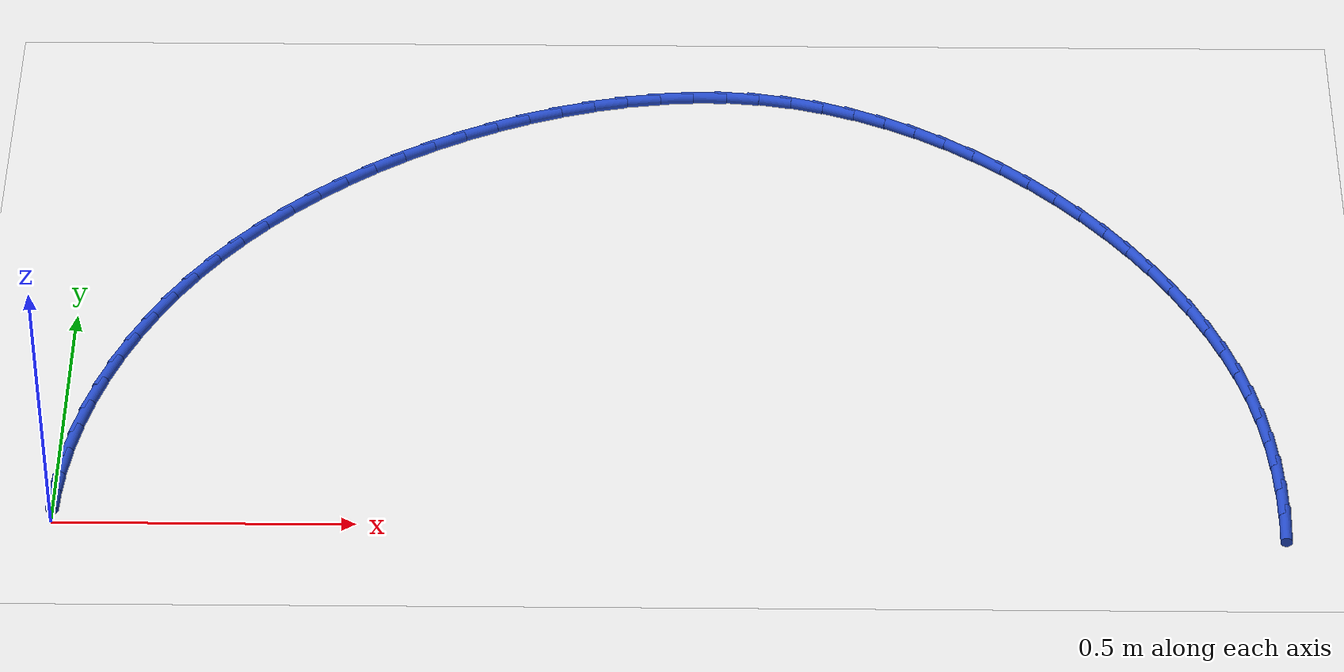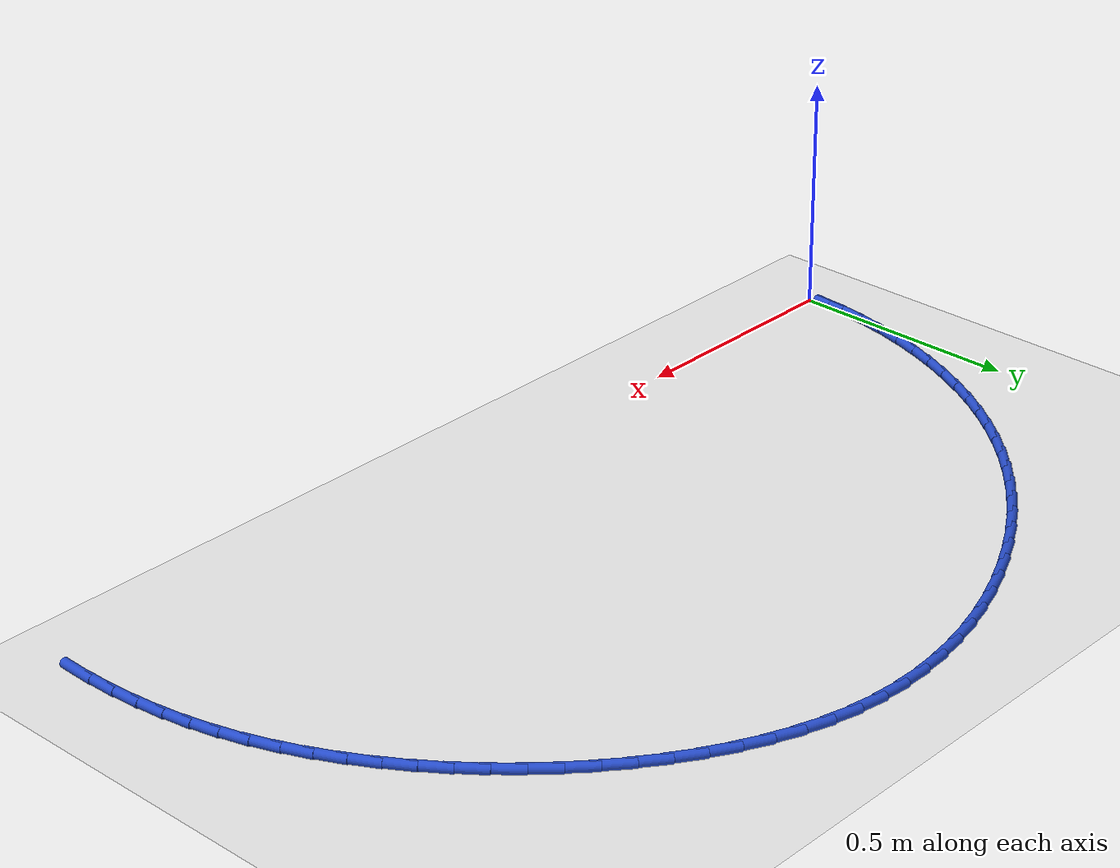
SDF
<sdf version="1.6">
 <world name="default">
  <model name="ground_plane">
   <static>1</static>
   <link name="link">
    <collision name="collision">
     <geometry><plane><normal>0 0 1</normal><size>100 100</size></plane></geometry>
     <surface><friction><ode><mu>100</mu><mu2>50</mu2></ode></friction></surface>
    </collision>
    <visual name="visual">
     <cast_shadows>0</cast_shadows>
     <geometry><plane><normal>0 0 1</normal><size>100 100</size></plane></geometry>
     <material>
      <script><uri>file://media/materials/scripts/gazebo.material</uri><name>Gazebo/WhiteGlow</name></script>
     </material>
    </visual>
   </link>
  </model>
  <model name="line">
   <link name="link_1">
    <pose>0.002159015263808909 0.05912635645151548 0.01 0 1.57 1.473780786966015</pose>
    <collision name="collision">
     <geometry><cylinder><radius>0.01</radius><length>0.08</length></cylinder></geometry>
    </collision>
    <visual name="visual">
     <material>
      <script><name>Gazebo/Blue</name><uri>file://media/materials/scripts/gazebo.material</uri></script>
     </material>
     <geometry><cylinder><radius>0.01</radius><length>0.08</length></cylinder></geometry>
    </visual>
   </link>
   <link name="link_2">
    <pose>0.007894925024102517 0.11806436761089492 0.01 0 1.57 1.4147460665220462</pose>
    <collision name="collision">
     <geometry><cylinder><radius>0.01</radius><length>0.08</length></cylinder></geometry>
    </collision>
    <visual name="visual">
     <material>
      <script><name>Gazebo/Blue</name><uri>file://media/materials/scripts/gazebo.material</uri></script>
     </material>
     <geometry><cylinder><radius>0.01</radius><length>0.08</length></cylinder></geometry>
    </visual>
   </link>
   <link name="link_3">
    <pose>0.017106878348418307 0.17661637583879544 0.01 0 1.57 1.356977284419157</pose>
    <collision name="collision">
     <geometry><cylinder><radius>0.01</radius><length>0.08</length></cylinder></geometry>
    </collision>
    <visual name="visual">
     <material>
      <script><name>Gazebo/Blue</name><uri>file://media/materials/scripts/gazebo.material</uri></script>
     </material>
     <geometry><cylinder><radius>0.01</radius><length>0.08</length></cylinder></geometry>
    </visual>
   </link>
   <link name="link_4">
    <pose>0.029694024304293763 0.2345847234958746 0.01 0 1.57 1.300235856434713</pose>
    <collision name="collision">
     <geometry><cylinder><radius>0.01</radius><length>0.08</length></cylinder></geometry>
    </collision>
    <visual name="visual">
     <material>
      <script><name>Gazebo/Blue</name><uri>file://media/materials/scripts/gazebo.material</uri></script>
     </material>
     <geometry><cylinder><radius>0.01</radius><length>0.08</length></cylinder></geometry>
    </visual>
   </link>
   <link name="link_5">
    <pose>0.045555511959266326 0.2917717529427894 0.01 0 1.57 1.2442664962997991</pose>
    <collision name="collision">
     <geometry><cylinder><radius>0.01</radius><length>0.08</length></cylinder></geometry>
    </collision>
    <visual name="visual">
     <material>
      <script><name>Gazebo/Blue</name><uri>file://media/materials/scripts/gazebo.material</uri></script>
     </material>
     <geometry><cylinder><radius>0.01</radius><length>0.08</length></cylinder></geometry>
    </visual>
   </link>
   <link name="link_6">
    <pose>0.06459049038087343 0.3479798065401974 0.01 0 1.57 1.188801872426474</pose>
    <collision name="collision">
     <geometry><cylinder><radius>0.01</radius><length>0.08</length></cylinder></geometry>
    </collision>
    <visual name="visual">
     <material>
      <script><name>Gazebo/Blue</name><uri>file://media/materials/scripts/gazebo.material</uri></script>
     </material>
     <geometry><cylinder><radius>0.01</radius><length>0.08</length></cylinder></geometry>
    </visual>
   </link>
   <link name="link_7">
    <pose>0.08669810863665253 0.40301122664875555 0.01 0 1.57 1.1335661511524422</pose>
    <collision name="collision">
     <geometry><cylinder><radius>0.01</radius><length>0.08</length></cylinder></geometry>
    </collision>
    <visual name="visual">
     <material>
      <script><name>Gazebo/Blue</name><uri>file://media/materials/scripts/gazebo.material</uri></script>
     </material>
     <geometry><cylinder><radius>0.01</radius><length>0.08</length></cylinder></geometry>
    </visual>
   </link>
   <link name="link_8">
    <pose>0.11177751579414111 0.45666835562912145 0.01 0 1.57 1.0782777709598934</pose>
    <collision name="collision">
     <geometry><cylinder><radius>0.01</radius><length>0.08</length></cylinder></geometry>
    </collision>
    <visual name="visual">
     <material>
      <script><name>Gazebo/Blue</name><uri>file://media/materials/scripts/gazebo.material</uri></script>
     </material>
     <geometry><cylinder><radius>0.01</radius><length>0.08</length></cylinder></geometry>
    </visual>
   </link>
   <link name="link_9">
    <pose>0.13972786092087658 0.5087535358419523 0.01 0 1.57 1.0226642113758695</pose>
    <collision name="collision">
     <geometry><cylinder><radius>0.01</radius><length>0.08</length></cylinder></geometry>
    </collision>
    <visual name="visual">
     <material>
      <script><name>Gazebo/Blue</name><uri>file://media/materials/scripts/gazebo.material</uri></script>
     </material>
     <geometry><cylinder><radius>0.01</radius><length>0.08</length></cylinder></geometry>
    </visual>
   </link>
   <link name="link_10">
    <pose>0.17044823589098546 0.5590704175989475 0.01 0 1.57 0.9670687593217856</pose>
    <collision name="collision">
     <geometry><cylinder><radius>0.01</radius><length>0.08</length></cylinder></geometry>
    </collision>
    <visual name="visual">
     <material>
      <script><name>Gazebo/Blue</name><uri>file://media/materials/scripts/gazebo.material</uri></script>
     </material>
     <geometry><cylinder><radius>0.01</radius><length>0.08</length></cylinder></geometry>
    </visual>
   </link>
   <link name="link_11">
    <pose>0.20383506834635784 0.6074835793024668 0.01 0 1.57 0.9122959479874819</pose>
    <collision name="collision">
     <geometry><cylinder><radius>0.01</radius><length>0.08</length></cylinder></geometry>
    </collision>
    <visual name="visual">
     <material>
      <script><name>Gazebo/Blue</name><uri>file://media/materials/scripts/gazebo.material</uri></script>
     </material>
     <geometry><cylinder><radius>0.01</radius><length>0.08</length></cylinder></geometry>
    </visual>
   </link>
   <link name="link_12">
    <pose>0.2397810458880033 0.6539431300179855 0.01 0 1.57 0.8584627317854395</pose>
    <collision name="collision">
     <geometry><cylinder><radius>0.01</radius><length>0.08</length></cylinder></geometry>
    </collision>
    <visual name="visual">
     <material>
      <script><name>Gazebo/Blue</name><uri>file://media/materials/scripts/gazebo.material</uri></script>
     </material>
     <geometry><cylinder><radius>0.01</radius><length>0.08</length></cylinder></geometry>
    </visual>
   </link>
   <link name="link_13">
    <pose>0.2781785759721811 0.6984055854164175 0.01 0 1.57 0.8056012542823358</pose>
    <collision name="collision">
     <geometry><cylinder><radius>0.01</radius><length>0.08</length></cylinder></geometry>
    </collision>
    <visual name="visual">
     <material>
      <script><name>Gazebo/Blue</name><uri>file://media/materials/scripts/gazebo.material</uri></script>
     </material>
     <geometry><cylinder><radius>0.01</radius><length>0.08</length></cylinder></geometry>
    </visual>
   </link>
   <link name="link_14">
    <pose>0.3189200660551504 0.7408274611686761 0.01 0 1.57 0.7537214967334992</pose>
    <collision name="collision">
     <geometry><cylinder><radius>0.01</radius><length>0.08</length></cylinder></geometry>
    </collision>
    <visual name="visual">
     <material>
      <script><name>Gazebo/Blue</name><uri>file://media/materials/scripts/gazebo.material</uri></script>
     </material>
     <geometry><cylinder><radius>0.01</radius><length>0.08</length></cylinder></geometry>
    </visual>
   </link>
   <link name="link_15">
    <pose>0.3618979235931707 0.7811652729456752 0.01 0 1.57 0.7028136699950093</pose>
    <collision name="collision">
     <geometry><cylinder><radius>0.01</radius><length>0.08</length></cylinder></geometry>
    </collision>
    <visual name="visual">
     <material>
      <script><name>Gazebo/Blue</name><uri>file://media/materials/scripts/gazebo.material</uri></script>
     </material>
     <geometry><cylinder><radius>0.01</radius><length>0.08</length></cylinder></geometry>
    </visual>
   </link>
   <link name="link_16">
    <pose>0.407004556042501 0.8193755364183284 0.01 0 1.57 0.6528508302967001</pose>
    <collision name="collision">
     <geometry><cylinder><radius>0.01</radius><length>0.08</length></cylinder></geometry>
    </collision>
    <visual name="visual">
     <material>
      <script><name>Gazebo/Blue</name><uri>file://media/materials/scripts/gazebo.material</uri></script>
     </material>
     <geometry><cylinder><radius>0.01</radius><length>0.08</length></cylinder></geometry>
    </visual>
   </link>
   <link name="link_17">
    <pose>0.4541323708594009 0.8554147672575496 0.01 0 1.57 0.6037915546869688</pose>
    <collision name="collision">
     <geometry><cylinder><radius>0.01</radius><length>0.08</length></cylinder></geometry>
    </collision>
    <visual name="visual">
     <material>
      <script><name>Gazebo/Blue</name><uri>file://media/materials/scripts/gazebo.material</uri></script>
     </material>
     <geometry><cylinder><radius>0.01</radius><length>0.08</length></cylinder></geometry>
    </visual>
   </link>
   <link name="link_18">
    <pose>0.5031737755001295 0.8892394811342521 0.01 0 1.57 0.5555825508961592</pose>
    <collision name="collision">
     <geometry><cylinder><radius>0.01</radius><length>0.08</length></cylinder></geometry>
    </collision>
    <visual name="visual">
     <material>
      <script><name>Gazebo/Blue</name><uri>file://media/materials/scripts/gazebo.material</uri></script>
     </material>
     <geometry><cylinder><radius>0.01</radius><length>0.08</length></cylinder></geometry>
    </visual>
   </link>
   <link name="link_19">
    <pose>0.5540211774209465 0.9208061937193501 0.01 0 1.57 0.5081457593067933</pose>
    <collision name="collision">
     <geometry><cylinder><radius>0.01</radius><length>0.08</length></cylinder></geometry>
    </collision>
    <visual name="visual">
     <material>
      <script><name>Gazebo/Blue</name><uri>file://media/materials/scripts/gazebo.material</uri></script>
     </material>
     <geometry><cylinder><radius>0.01</radius><length>0.08</length></cylinder></geometry>
    </visual>
   </link>
   <link name="link_20">
    <pose>0.6065660441165368 0.950069840056141 0.01 0 1.57 0.4606020186189989</pose>
    <collision name="collision">
     <geometry><cylinder><radius>0.01</radius><length>0.08</length></cylinder></geometry>
    </collision>
    <visual name="visual">
     <material>
      <script><name>Gazebo/Blue</name><uri>file://media/materials/scripts/gazebo.material</uri></script>
     </material>
     <geometry><cylinder><radius>0.01</radius><length>0.08</length></cylinder></geometry>
    </visual>
   </link>
   <link name="link_21">
    <pose>0.6606539596882735 0.9769081982480973 0.01 0 1.57 0.41147361001230065</pose>
    <collision name="collision">
     <geometry><cylinder><radius>0.01</radius><length>0.08</length></cylinder></geometry>
    </collision>
    <visual name="visual">
     <material>
      <script><name>Gazebo/Blue</name><uri>file://media/materials/scripts/gazebo.material</uri></script>
     </material>
     <geometry><cylinder><radius>0.01</radius><length>0.08</length></cylinder></geometry>
    </visual>
   </link>
   <link name="link_22">
    <pose>0.7160648540572181 1.0010886431509416 0.01 0 1.57 0.360175971160033</pose>
    <collision name="collision">
     <geometry><cylinder><radius>0.01</radius><length>0.08</length></cylinder></geometry>
    </collision>
    <visual name="visual">
     <material>
      <script><name>Gazebo/Blue</name><uri>file://media/materials/scripts/gazebo.material</uri></script>
     </material>
     <geometry><cylinder><radius>0.01</radius><length>0.08</length></cylinder></geometry>
    </visual>
   </link>
   <link name="link_23">
    <pose>0.7725736032052705 1.0223700509795666 0.01 0 1.57 0.30620813034634775</pose>
    <collision name="collision">
     <geometry><cylinder><radius>0.01</radius><length>0.08</length></cylinder></geometry>
    </collision>
    <visual name="visual">
     <material>
      <script><name>Gazebo/Blue</name><uri>file://media/materials/scripts/gazebo.material</uri></script>
     </material>
     <geometry><cylinder><radius>0.01</radius><length>0.08</length></cylinder></geometry>
    </visual>
   </link>
   <link name="link_24">
    <pose>0.8299550831143296 1.0405112979488644 0.01 0 1.57 0.24907284698867735</pose>
    <collision name="collision">
     <geometry><cylinder><radius>0.01</radius><length>0.08</length></cylinder></geometry>
    </collision>
    <visual name="visual">
     <material>
      <script><name>Gazebo/Blue</name><uri>file://media/materials/scripts/gazebo.material</uri></script>
     </material>
     <geometry><cylinder><radius>0.01</radius><length>0.08</length></cylinder></geometry>
    </visual>
   </link>
   <link name="link_25">
    <pose>0.8879841697662947 1.055271260273727 0.01 0 1.57 0.18828624755859663</pose>
    <collision name="collision">
     <geometry><cylinder><radius>0.01</radius><length>0.08</length></cylinder></geometry>
    </collision>
    <visual name="visual">
     <material>
      <script><name>Gazebo/Blue</name><uri>file://media/materials/scripts/gazebo.material</uri></script>
     </material>
     <geometry><cylinder><radius>0.01</radius><length>0.08</length></cylinder></geometry>
    </visual>
   </link>
   <link name="link_26">
    <pose>0.946435739143065 1.0664088141690473 0.01 0 1.57 0.12339636364981126</pose>
    <collision name="collision">
     <geometry><cylinder><radius>0.01</radius><length>0.08</length></cylinder></geometry>
    </collision>
    <visual name="visual">
     <material>
      <script><name>Gazebo/Blue</name><uri>file://media/materials/scripts/gazebo.material</uri></script>
     </material>
     <geometry><cylinder><radius>0.01</radius><length>0.08</length></cylinder></geometry>
    </visual>
   </link>
   <link name="link_27">
    <pose>1.00508466722654 1.0736828358497175 0.01 0 1.57 0.05401262730445534</pose>
    <collision name="collision">
     <geometry><cylinder><radius>0.01</radius><length>0.08</length></cylinder></geometry>
    </collision>
    <visual name="visual">
     <material>
      <script><name>Gazebo/Blue</name><uri>file://media/materials/scripts/gazebo.material</uri></script>
     </material>
     <geometry><cylinder><radius>0.01</radius><length>0.08</length></cylinder></geometry>
    </visual>
   </link>
   <link name="link_28">
    <pose>1.063705829998619 1.0768522015306297 0.01 0 1.57 -0.020152298107891625</pose>
    <collision name="collision">
     <geometry><cylinder><radius>0.01</radius><length>0.08</length></cylinder></geometry>
    </collision>
    <visual name="visual">
     <material>
      <script><name>Gazebo/Blue</name><uri>file://media/materials/scripts/gazebo.material</uri></script>
     </material>
     <geometry><cylinder><radius>0.01</radius><length>0.08</length></cylinder></geometry>
    </visual>
   </link>
   <link name="link_29">
    <pose>1.122074103441201 1.0756757874266754 0.01 0 1.57 -0.09922894268261022</pose>
    <collision name="collision">
     <geometry><cylinder><radius>0.01</radius><length>0.08</length></cylinder></geometry>
    </collision>
    <visual name="visual">
     <material>
      <script><name>Gazebo/Blue</name><uri>file://media/materials/scripts/gazebo.material</uri></script>
     </material>
     <geometry><cylinder><radius>0.01</radius><length>0.08</length></cylinder></geometry>
    </visual>
   </link>
   <link name="link_30">
    <pose>1.1799643635361856 1.0699124697527482 0.01 0 1.57 -0.182021553014733</pose>
    <collision name="collision">
     <geometry><cylinder><radius>0.01</radius><length>0.08</length></cylinder></geometry>
    </collision>
    <visual name="visual">
     <material>
      <script><name>Gazebo/Blue</name><uri>file://media/materials/scripts/gazebo.material</uri></script>
     </material>
     <geometry><cylinder><radius>0.01</radius><length>0.08</length></cylinder></geometry>
    </visual>
   </link>
   <link name="link_31">
    <pose>1.2371602322086583 1.0593850672024898 0.01 0 1.57 -0.2623034234913307</pose>
    <collision name="collision">
     <geometry><cylinder><radius>0.01</radius><length>0.08</length></cylinder></geometry>
    </collision>
    <visual name="visual">
     <material>
      <script><name>Gazebo/Blue</name><uri>file://media/materials/scripts/gazebo.material</uri></script>
     </material>
     <geometry><cylinder><radius>0.01</radius><length>0.08</length></cylinder></geometry>
    </visual>
   </link>
   <link name="link_32">
    <pose>1.293492393448143 1.0442604740016062 0.01 0 1.57 -0.33795379488426297</pose>
    <collision name="collision">
     <geometry><cylinder><radius>0.01</radius><length>0.08</length></cylinder></geometry>
    </collision>
    <visual name="visual">
     <material>
      <script><name>Gazebo/Blue</name><uri>file://media/materials/scripts/gazebo.material</uri></script>
     </material>
     <geometry><cylinder><radius>0.01</radius><length>0.08</length></cylinder></geometry>
    </visual>
   </link>
   <link name="link_33">
    <pose>1.3488072917657026 1.0248208111491794 0.01 0 1.57 -0.40906469753116154</pose>
    <collision name="collision">
     <geometry><cylinder><radius>0.01</radius><length>0.08</length></cylinder></geometry>
    </collision>
    <visual name="visual">
     <material>
      <script><name>Gazebo/Blue</name><uri>file://media/materials/scripts/gazebo.material</uri></script>
     </material>
     <geometry><cylinder><radius>0.01</radius><length>0.08</length></cylinder></geometry>
    </visual>
   </link>
   <link name="link_34">
    <pose>1.4029513830088236 1.0013482825260522 0.01 0 1.57 -0.47589002244262163</pose>
    <collision name="collision">
     <geometry><cylinder><radius>0.01</radius><length>0.08</length></cylinder></geometry>
    </collision>
    <visual name="visual">
     <material>
      <script><name>Gazebo/Blue</name><uri>file://media/materials/scripts/gazebo.material</uri></script>
     </material>
     <geometry><cylinder><radius>0.01</radius><length>0.08</length></cylinder></geometry>
    </visual>
   </link>
   <link name="link_35">
    <pose>1.4557711230249941 0.974125092013067 0.01 0 1.57 -0.5387930193385191</pose>
    <collision name="collision">
     <geometry><cylinder><radius>0.01</radius><length>0.08</length></cylinder></geometry>
    </collision>
    <visual name="visual">
     <material>
      <script><name>Gazebo/Blue</name><uri>file://media/materials/scripts/gazebo.material</uri></script>
     </material>
     <geometry><cylinder><radius>0.01</radius><length>0.08</length></cylinder></geometry>
    </visual>
   </link>
   <link name="link_36">
    <pose>1.5071129676617014 0.9434334434910671 0.01 0 1.57 -0.5982052470767579</pose>
    <collision name="collision">
     <geometry><cylinder><radius>0.01</radius><length>0.08</length></cylinder></geometry>
    </collision>
    <visual name="visual">
     <material>
      <script><name>Gazebo/Blue</name><uri>file://media/materials/scripts/gazebo.material</uri></script>
     </material>
     <geometry><cylinder><radius>0.01</radius><length>0.08</length></cylinder></geometry>
    </visual>
   </link>
   <link name="link_37">
    <pose>1.5568233727664342 0.9095555408408955 0.01 0 1.57 -0.6545967453932735</pose>
    <collision name="collision">
     <geometry><cylinder><radius>0.01</radius><length>0.08</length></cylinder></geometry>
    </collision>
    <visual name="visual">
     <material>
      <script><name>Gazebo/Blue</name><uri>file://media/materials/scripts/gazebo.material</uri></script>
     </material>
     <geometry><cylinder><radius>0.01</radius><length>0.08</length></cylinder></geometry>
    </visual>
   </link>
   <link name="link_38">
    <pose>1.6047487941866794 0.8727735879433948 0.01 0 1.57 -0.7084565401191439</pose>
    <collision name="collision">
     <geometry><cylinder><radius>0.01</radius><length>0.08</length></cylinder></geometry>
    </collision>
    <visual name="visual">
     <material>
      <script><name>Gazebo/Blue</name><uri>file://media/materials/scripts/gazebo.material</uri></script>
     </material>
     <geometry><cylinder><radius>0.01</radius><length>0.08</length></cylinder></geometry>
    </visual>
   </link>
   <link name="link_39">
    <pose>1.6507356877699244 0.8333697886794079 0.01 0 1.57 -0.7602817335155317</pose>
    <collision name="collision">
     <geometry><cylinder><radius>0.01</radius><length>0.08</length></cylinder></geometry>
    </collision>
    <visual name="visual">
     <material>
      <script><name>Gazebo/Blue</name><uri>file://media/materials/scripts/gazebo.material</uri></script>
     </material>
     <geometry><cylinder><radius>0.01</radius><length>0.08</length></cylinder></geometry>
    </visual>
   </link>
   <link name="link_40">
    <pose>1.6946305093636576 0.791626346929778 0.01 0 1.57 -0.8105925144008046</pose>
    <collision name="collision">
     <geometry><cylinder><radius>0.01</radius><length>0.08</length></cylinder></geometry>
    </collision>
    <visual name="visual">
     <material>
      <script><name>Gazebo/Blue</name><uri>file://media/materials/scripts/gazebo.material</uri></script>
     </material>
     <geometry><cylinder><radius>0.01</radius><length>0.08</length></cylinder></geometry>
    </visual>
   </link>
   <link name="link_41">
    <pose>1.7362801589520656 0.7478233168942315 0.01 0 1.57 -0.8604138944254027</pose>
    <collision name="collision">
     <geometry><cylinder><radius>0.01</radius><length>0.08</length></cylinder></geometry>
    </collision>
    <visual name="visual">
     <material>
      <script><name>Gazebo/Blue</name><uri>file://media/materials/scripts/gazebo.material</uri></script>
     </material>
     <geometry><cylinder><radius>0.01</radius><length>0.08</length></cylinder></geometry>
    </visual>
   </link>
   <link name="link_42">
    <pose>1.7755446665028651 0.7021772018934904 0.01 0 1.57 -0.9106709860137723</pose>
    <collision name="collision">
     <geometry><cylinder><radius>0.01</radius><length>0.08</length></cylinder></geometry>
    </collision>
    <visual name="visual">
     <material>
      <script><name>Gazebo/Blue</name><uri>file://media/materials/scripts/gazebo.material</uri></script>
     </material>
     <geometry><cylinder><radius>0.01</radius><length>0.08</length></cylinder></geometry>
    </visual>
   </link>
   <link name="link_43">
    <pose>1.812299049985598 0.6548319613118478 0.01 0 1.57 -0.961622260252201</pose>
    <collision name="collision">
     <geometry><cylinder><radius>0.01</radius><length>0.08</length></cylinder></geometry>
    </collision>
    <visual name="visual">
     <material>
      <script><name>Gazebo/Blue</name><uri>file://media/materials/scripts/gazebo.material</uri></script>
     </material>
     <geometry><cylinder><radius>0.01</radius><length>0.08</length></cylinder></geometry>
    </visual>
   </link>
   <link name="link_44">
    <pose>1.8464191451518999 0.6059275963587196 0.01 0 1.57 -1.0134917994127945</pose>
    <collision name="collision">
     <geometry><cylinder><radius>0.01</radius><length>0.08</length></cylinder></geometry>
    </collision>
    <visual name="visual">
     <material>
      <script><name>Gazebo/Blue</name><uri>file://media/materials/scripts/gazebo.material</uri></script>
     </material>
     <geometry><cylinder><radius>0.01</radius><length>0.08</length></cylinder></geometry>
    </visual>
   </link>
   <link name="link_45">
    <pose>1.8777807877534063 0.5556041082435215 0.01 0 1.57 -1.066502307511664</pose>
    <collision name="collision">
     <geometry><cylinder><radius>0.01</radius><length>0.08</length></cylinder></geometry>
    </collision>
    <visual name="visual">
     <material>
      <script><name>Gazebo/Blue</name><uri>file://media/materials/scripts/gazebo.material</uri></script>
     </material>
     <geometry><cylinder><radius>0.01</radius><length>0.08</length></cylinder></geometry>
    </visual>
   </link>
   <link name="link_46">
    <pose>1.906259813541753 0.504001498175669 0.01 0 1.57 -1.1208718962941244</pose>
    <collision name="collision">
     <geometry><cylinder><radius>0.01</radius><length>0.08</length></cylinder></geometry>
    </collision>
    <visual name="visual">
     <material>
      <script><name>Gazebo/Blue</name><uri>file://media/materials/scripts/gazebo.material</uri></script>
     </material>
     <geometry><cylinder><radius>0.01</radius><length>0.08</length></cylinder></geometry>
    </visual>
   </link>
   <link name="link_47">
    <pose>1.9317320582685762 0.4512597673645781 0.01 0 1.57 -1.176809676093022</pose>
    <collision name="collision">
     <geometry><cylinder><radius>0.01</radius><length>0.08</length></cylinder></geometry>
    </collision>
    <visual name="visual">
     <material>
      <script><name>Gazebo/Blue</name><uri>file://media/materials/scripts/gazebo.material</uri></script>
     </material>
     <geometry><cylinder><radius>0.01</radius><length>0.08</length></cylinder></geometry>
    </visual>
   </link>
   <link name="link_48">
    <pose>1.9540733576855118 0.39751891701966463 0.01 0 1.57 -1.2345098742800118</pose>
    <collision name="collision">
     <geometry><cylinder><radius>0.01</radius><length>0.08</length></cylinder></geometry>
    </collision>
    <visual name="visual">
     <material>
      <script><name>Gazebo/Blue</name><uri>file://media/materials/scripts/gazebo.material</uri></script>
     </material>
     <geometry><cylinder><radius>0.01</radius><length>0.08</length></cylinder></geometry>
    </visual>
   </link>
   <link name="link_49">
    <pose>1.973159547544195 0.34291894835034387 0.01 0 1.57 -1.2940335008299004</pose>
    <collision name="collision">
     <geometry><cylinder><radius>0.01</radius><length>0.08</length></cylinder></geometry>
    </collision>
    <visual name="visual">
     <material>
      <script><name>Gazebo/Blue</name><uri>file://media/materials/scripts/gazebo.material</uri></script>
     </material>
     <geometry><cylinder><radius>0.01</radius><length>0.08</length></cylinder></geometry>
    </visual>
   </link>
   <link name="link_50">
    <pose>1.9888739055285956 0.28759697256629674 0.01 0 1.57 -1.3531615342028043</pose>
    <collision name="collision">
     <geometry><cylinder><radius>0.01</radius><length>0.08</length></cylinder></geometry>
    </collision>
    <visual name="visual">
     <material>
      <script><name>Gazebo/Blue</name><uri>file://media/materials/scripts/gazebo.material</uri></script>
     </material>
     <geometry><cylinder><radius>0.01</radius><length>0.08</length></cylinder></geometry>
    </visual>
   </link>
   <link name="link_51">
    <pose>2.001249894695321 0.23163177789498643 0.01 0 1.57 -1.4094357723370723</pose>
    <collision name="collision">
     <geometry><cylinder><radius>0.01</radius><length>0.08</length></cylinder></geometry>
    </collision>
    <visual name="visual">
     <material>
      <script><name>Gazebo/Blue</name><uri>file://media/materials/scripts/gazebo.material</uri></script>
     </material>
     <geometry><cylinder><radius>0.01</radius><length>0.08</length></cylinder></geometry>
    </visual>
   </link>
   <link name="link_52">
    <pose>2.0104603577047944 0.17504802589353496 0.01 0 1.57 -1.462389673365408</pose>
    <collision name="collision">
     <geometry><cylinder><radius>0.01</radius><length>0.08</length></cylinder></geometry>
    </collision>
    <visual name="visual">
     <material>
      <script><name>Gazebo/Blue</name><uri>file://media/materials/scripts/gazebo.material</uri></script>
     </material>
     <geometry><cylinder><radius>0.01</radius><length>0.08</length></cylinder></geometry>
    </visual>
   </link>
   <link name="link_53">
    <pose>2.016683414218031 0.11786832884884423 0.01 0 1.57 -1.5117552316881</pose>
    <collision name="collision">
     <geometry><cylinder><radius>0.01</radius><length>0.08</length></cylinder></geometry>
    </collision>
    <visual name="visual">
     <material>
      <script><name>Gazebo/Blue</name><uri>file://media/materials/scripts/gazebo.material</uri></script>
     </material>
     <geometry><cylinder><radius>0.01</radius><length>0.08</length></cylinder></geometry>
    </visual>
   </link>
   <link name="link_54">
    <pose>2.0200971838960453 0.06011529904781629 0.01 0 1.57 -1.557374282689644</pose>
    <collision name="collision">
     <geometry><cylinder><radius>0.01</radius><length>0.08</length></cylinder></geometry>
    </collision>
    <visual name="visual">
     <material>
      <script><name>Gazebo/Blue</name><uri>file://media/materials/scripts/gazebo.material</uri></script>
     </material>
     <geometry><cylinder><radius>0.01</radius><length>0.08</length></cylinder></geometry>
    </visual>
   </link>
   <link name="link_55">
    <pose>2.0208797863998527 0.0018115487773531537 0.01 0 1.57 1.5424104085230474</pose>
    <collision name="collision">
     <geometry><cylinder><radius>0.01</radius><length>0.08</length></cylinder></geometry>
    </collision>
    <visual name="visual">
     <material>
      <script><name>Gazebo/Blue</name><uri>file://media/materials/scripts/gazebo.material</uri></script>
     </material>
     <geometry><cylinder><radius>0.01</radius><length>0.08</length></cylinder></geometry>
    </visual>
   </link>
   <link name="link_111">
    <pose>0.002185364511319822 0.05912732352651101 0.01 0 1.57 1.533852827930103</pose>
    <collision name="collision">
     <geometry><cylinder><radius>0.01</radius><length>0.08</length></cylinder></geometry>
    </collision>
    <visual name="visual">
     <material>
      <script><name>Gazebo/Blue</name><uri>file://media/materials/scripts/gazebo.material</uri></script>
     </material>
     <geometry><cylinder><radius>0.01</radius><length>0.08</length></cylinder></geometry>
    </visual>
   </link>
  </model>
 </world>
</sdf>
